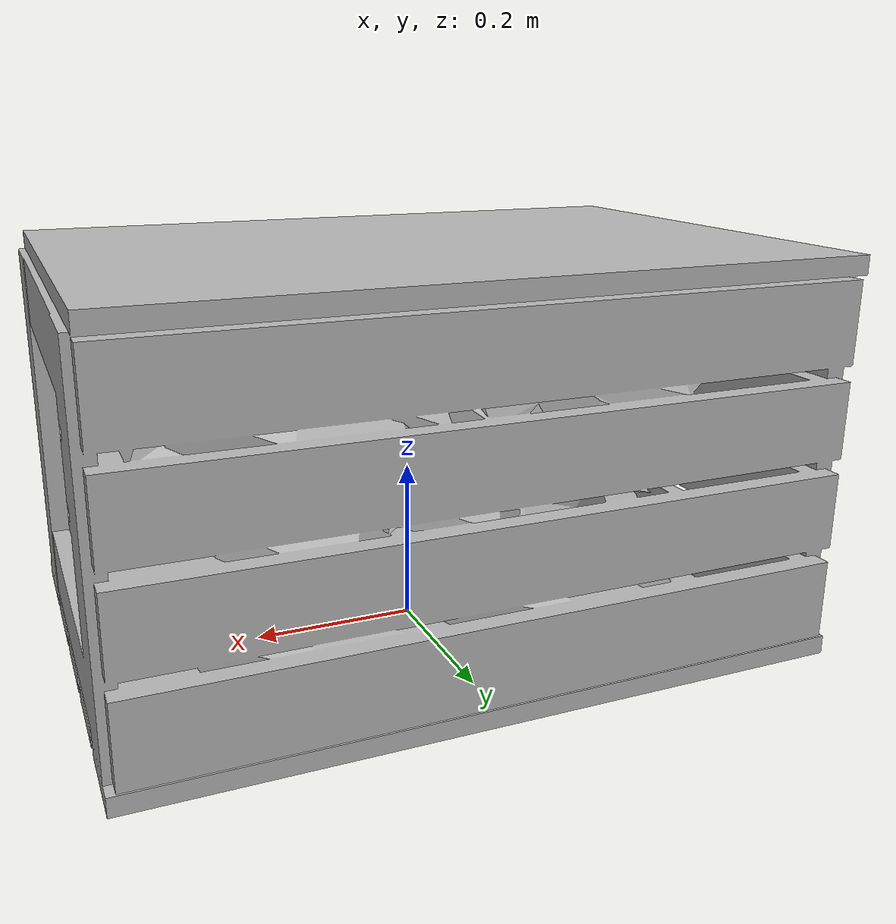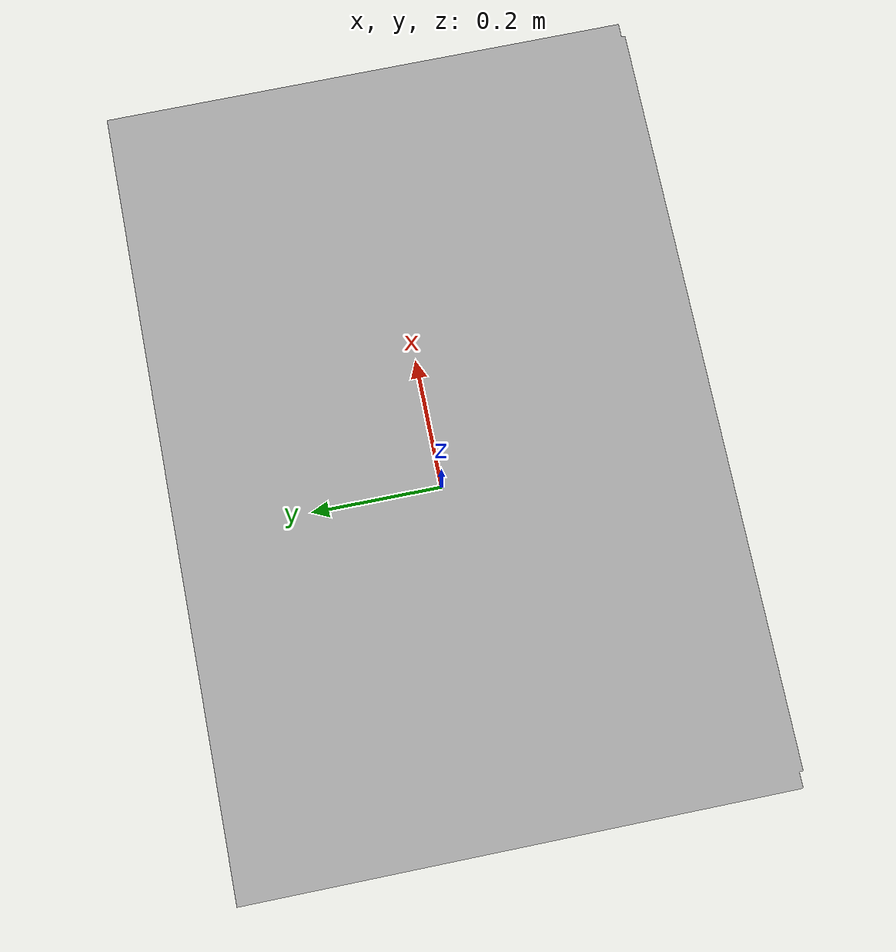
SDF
<sdf version="1.7">
  <model name="small_crate">
    <static>true</static>
    <link name="small_crate_link">
      <collision name="small_crate_collision">
        <geometry>
          <mesh>
            <uri>model://small_crate/small_crate.dae</uri>
            <scale>1 1 1</scale>
          </mesh>
        </geometry>
      </collision>
      <visual name="small_crate_visual">
        <geometry>
          <mesh>
            <uri>model://small_crate/small_crate.dae</uri>
            <scale>1 1 1</scale>
          </mesh>
        </geometry>
      </visual>
    </link>
  </model>
</sdf>
